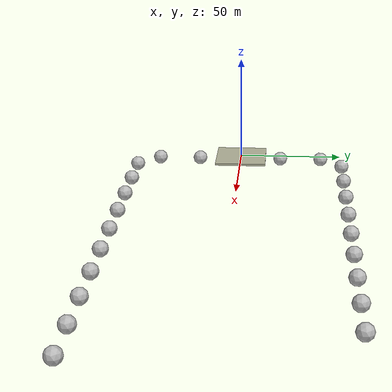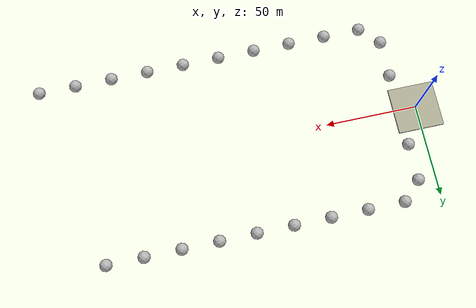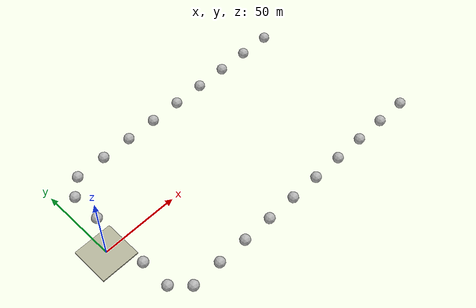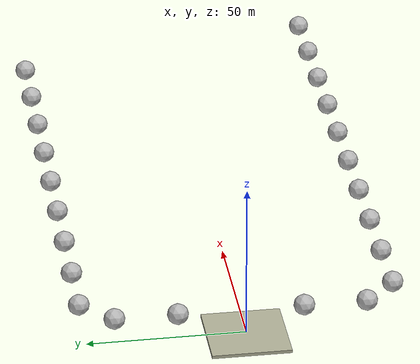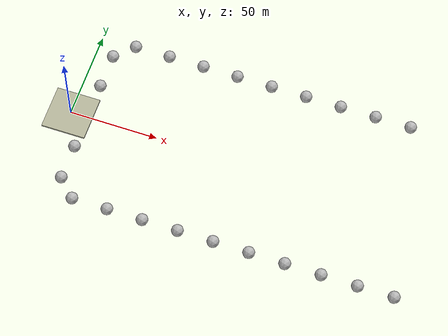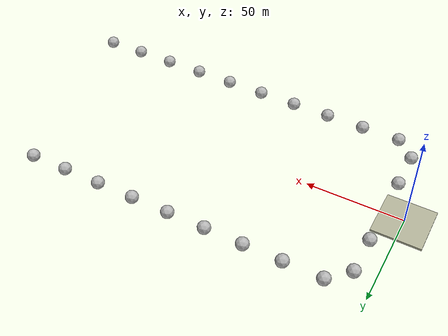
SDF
<sdf version="1.6">
 <world name="default">
  <model name="staging">
   <pose>0 0 -0.002 0 0 0</pose>
   <static>true</static>
   <link name="link">
    <pose>0 0 -0.5 0 0 0</pose>
    <visual name="visual">
     <geometry><box><size>25 25 1</size></box></geometry>
     <material>
      <script><uri>file://media/materials/scripts/gazebo.material</uri><name>Gazebo/Residential</name></script>
     </material>
    </visual>
    <collision name="collision"><geometry><box><size>25 20 1</size></box></geometry></collision>
   </link>
  </model>
  <model name="start_area">
   <static>true</static>
   <pose>10
        0
        1.5
        0
        0
        0</pose>
   <link name="link">
    <collision name="collision">
     <geometry><box><size>1.0
                5.0
                3.0</size></box></geometry>
     <surface><contact><collide_without_contact>1</collide_without_contact></contact></surface>
    </collision>
    <sensor name="start_area_sensor" type="contact"><contact><collision>collision</collision></contact></sensor>
   </link>
   <plugin name="touch_start_area" filename="libTouchPlugin.so">
    <sensor>start_area_sensor</sensor>
    <time>0.001</time>
    <namespace>subt/start</namespace>
    <enabled>true</enabled>
   </plugin>
  </model>
  <model name="blocker_101">
   <pose>20
    -50.0
    0
    0
    0
    0</pose>
   <static>true</static>
   <link name="link">
    <pose>0 0 0 1.5707963267948966 0 0</pose>
    <collision name="collision">
     <geometry>
      <mesh><scale>1.2 1.2 1.2</scale><uri>model://cave_tile_blocker/meshes/cave_tile_blocker.obj</uri></mesh>
     </geometry>
    </collision>
    <visual name="visual">
     <geometry>
      <mesh><scale>1.2 1.2 1.2</scale><uri>model://cave_tile_blocker/meshes/cave_tile_blocker.obj</uri></mesh>
     </geometry>
    </visual>
   </link>
  </model>
  <model name="blocker_102">
   <pose>20
    50.0
    0
    0
    0
    0</pose>
   <static>true</static>
   <link name="link">
    <pose>0 0 0 1.5707963267948966 0 0</pose>
    <collision name="collision">
     <geometry>
      <mesh><scale>1.2 1.2 1.2</scale><uri>model://cave_tile_blocker/meshes/cave_tile_blocker.obj</uri></mesh>
     </geometry>
    </collision>
    <visual name="visual">
     <geometry>
      <mesh><scale>1.2 1.2 1.2</scale><uri>model://cave_tile_blocker/meshes/cave_tile_blocker.obj</uri></mesh>
     </geometry>
    </visual>
   </link>
  </model>
  <model name="blocker_103">
   <pose>40
    -50.0
    0
    0
    0
    0</pose>
   <static>true</static>
   <link name="link">
    <pose>0 0 0 1.5707963267948966 0 0</pose>
    <collision name="collision">
     <geometry>
      <mesh><scale>1.2 1.2 1.2</scale><uri>model://cave_tile_blocker/meshes/cave_tile_blocker.obj</uri></mesh>
     </geometry>
    </collision>
    <visual name="visual">
     <geometry>
      <mesh><scale>1.2 1.2 1.2</scale><uri>model://cave_tile_blocker/meshes/cave_tile_blocker.obj</uri></mesh>
     </geometry>
    </visual>
   </link>
  </model>
  <model name="blocker_104">
   <pose>40
    50.0
    0
    0
    0
    0</pose>
   <static>true</static>
   <link name="link">
    <pose>0 0 0 1.5707963267948966 0 0</pose>
    <collision name="collision">
     <geometry>
      <mesh><scale>1.2 1.2 1.2</scale><uri>model://cave_tile_blocker/meshes/cave_tile_blocker.obj</uri></mesh>
     </geometry>
    </collision>
    <visual name="visual">
     <geometry>
      <mesh><scale>1.2 1.2 1.2</scale><uri>model://cave_tile_blocker/meshes/cave_tile_blocker.obj</uri></mesh>
     </geometry>
    </visual>
   </link>
  </model>
  <model name="blocker_105">
   <pose>60
    -50.0
    0
    0
    0
    0</pose>
   <static>true</static>
   <link name="link">
    <pose>0 0 0 1.5707963267948966 0 0</pose>
    <collision name="collision">
     <geometry>
      <mesh><scale>1.2 1.2 1.2</scale><uri>model://cave_tile_blocker/meshes/cave_tile_blocker.obj</uri></mesh>
     </geometry>
    </collision>
    <visual name="visual">
     <geometry>
      <mesh><scale>1.2 1.2 1.2</scale><uri>model://cave_tile_blocker/meshes/cave_tile_blocker.obj</uri></mesh>
     </geometry>
    </visual>
   </link>
  </model>
  <model name="blocker_106">
   <pose>60
    50.0
    0
    0
    0
    0</pose>
   <static>true</static>
   <link name="link">
    <pose>0 0 0 1.5707963267948966 0 0</pose>
    <collision name="collision">
     <geometry>
      <mesh><scale>1.2 1.2 1.2</scale><uri>model://cave_tile_blocker/meshes/cave_tile_blocker.obj</uri></mesh>
     </geometry>
    </collision>
    <visual name="visual">
     <geometry>
      <mesh><scale>1.2 1.2 1.2</scale><uri>model://cave_tile_blocker/meshes/cave_tile_blocker.obj</uri></mesh>
     </geometry>
    </visual>
   </link>
  </model>
  <model name="blocker_107">
   <pose>80
    -50.0
    0
    0
    0
    0</pose>
   <static>true</static>
   <link name="link">
    <pose>0 0 0 1.5707963267948966 0 0</pose>
    <collision name="collision">
     <geometry>
      <mesh><scale>1.2 1.2 1.2</scale><uri>model://cave_tile_blocker/meshes/cave_tile_blocker.obj</uri></mesh>
     </geometry>
    </collision>
    <visual name="visual">
     <geometry>
      <mesh><scale>1.2 1.2 1.2</scale><uri>model://cave_tile_blocker/meshes/cave_tile_blocker.obj</uri></mesh>
     </geometry>
    </visual>
   </link>
  </model>
  <model name="blocker_108">
   <pose>80
    50.0
    0
    0
    0
    0</pose>
   <static>true</static>
   <link name="link">
    <pose>0 0 0 1.5707963267948966 0 0</pose>
    <collision name="collision">
     <geometry>
      <mesh><scale>1.2 1.2 1.2</scale><uri>model://cave_tile_blocker/meshes/cave_tile_blocker.obj</uri></mesh>
     </geometry>
    </collision>
    <visual name="visual">
     <geometry>
      <mesh><scale>1.2 1.2 1.2</scale><uri>model://cave_tile_blocker/meshes/cave_tile_blocker.obj</uri></mesh>
     </geometry>
    </visual>
   </link>
  </model>
  <model name="blocker_109">
   <pose>100
    -50.0
    0
    0
    0
    0</pose>
   <static>true</static>
   <link name="link">
    <pose>0 0 0 1.5707963267948966 0 0</pose>
    <collision name="collision">
     <geometry>
      <mesh><scale>1.2 1.2 1.2</scale><uri>model://cave_tile_blocker/meshes/cave_tile_blocker.obj</uri></mesh>
     </geometry>
    </collision>
    <visual name="visual">
     <geometry>
      <mesh><scale>1.2 1.2 1.2</scale><uri>model://cave_tile_blocker/meshes/cave_tile_blocker.obj</uri></mesh>
     </geometry>
    </visual>
   </link>
  </model>
  <model name="blocker_110">
   <pose>100
    50.0
    0
    0
    0
    0</pose>
   <static>true</static>
   <link name="link">
    <pose>0 0 0 1.5707963267948966 0 0</pose>
    <collision name="collision">
     <geometry>
      <mesh><scale>1.2 1.2 1.2</scale><uri>model://cave_tile_blocker/meshes/cave_tile_blocker.obj</uri></mesh>
     </geometry>
    </collision>
    <visual name="visual">
     <geometry>
      <mesh><scale>1.2 1.2 1.2</scale><uri>model://cave_tile_blocker/meshes/cave_tile_blocker.obj</uri></mesh>
     </geometry>
    </visual>
   </link>
  </model>
  <model name="blocker_111">
   <pose>120
    -50.0
    0
    0
    0
    0</pose>
   <static>true</static>
   <link name="link">
    <pose>0 0 0 1.5707963267948966 0 0</pose>
    <collision name="collision">
     <geometry>
      <mesh><scale>1.2 1.2 1.2</scale><uri>model://cave_tile_blocker/meshes/cave_tile_blocker.obj</uri></mesh>
     </geometry>
    </collision>
    <visual name="visual">
     <geometry>
      <mesh><scale>1.2 1.2 1.2</scale><uri>model://cave_tile_blocker/meshes/cave_tile_blocker.obj</uri></mesh>
     </geometry>
    </visual>
   </link>
  </model>
  <model name="blocker_112">
   <pose>120
    50.0
    0
    0
    0
    0</pose>
   <static>true</static>
   <link name="link">
    <pose>0 0 0 1.5707963267948966 0 0</pose>
    <collision name="collision">
     <geometry>
      <mesh><scale>1.2 1.2 1.2</scale><uri>model://cave_tile_blocker/meshes/cave_tile_blocker.obj</uri></mesh>
     </geometry>
    </collision>
    <visual name="visual">
     <geometry>
      <mesh><scale>1.2 1.2 1.2</scale><uri>model://cave_tile_blocker/meshes/cave_tile_blocker.obj</uri></mesh>
     </geometry>
    </visual>
   </link>
  </model>
  <model name="blocker_113">
   <pose>140
    -50.0
    0
    0
    0
    0</pose>
   <static>true</static>
   <link name="link">
    <pose>0 0 0 1.5707963267948966 0 0</pose>
    <collision name="collision">
     <geometry>
      <mesh><scale>1.2 1.2 1.2</scale><uri>model://cave_tile_blocker/meshes/cave_tile_blocker.obj</uri></mesh>
     </geometry>
    </collision>
    <visual name="visual">
     <geometry>
      <mesh><scale>1.2 1.2 1.2</scale><uri>model://cave_tile_blocker/meshes/cave_tile_blocker.obj</uri></mesh>
     </geometry>
    </visual>
   </link>
  </model>
  <model name="blocker_114">
   <pose>140
    50.0
    0
    0
    0
    0</pose>
   <static>true</static>
   <link name="link">
    <pose>0 0 0 1.5707963267948966 0 0</pose>
    <collision name="collision">
     <geometry>
      <mesh><scale>1.2 1.2 1.2</scale><uri>model://cave_tile_blocker/meshes/cave_tile_blocker.obj</uri></mesh>
     </geometry>
    </collision>
    <visual name="visual">
     <geometry>
      <mesh><scale>1.2 1.2 1.2</scale><uri>model://cave_tile_blocker/meshes/cave_tile_blocker.obj</uri></mesh>
     </geometry>
    </visual>
   </link>
  </model>
  <model name="blocker_115">
   <pose>160
    -50.0
    0
    0
    0
    0</pose>
   <static>true</static>
   <link name="link">
    <pose>0 0 0 1.5707963267948966 0 0</pose>
    <collision name="collision">
     <geometry>
      <mesh><scale>1.2 1.2 1.2</scale><uri>model://cave_tile_blocker/meshes/cave_tile_blocker.obj</uri></mesh>
     </geometry>
    </collision>
    <visual name="visual">
     <geometry>
      <mesh><scale>1.2 1.2 1.2</scale><uri>model://cave_tile_blocker/meshes/cave_tile_blocker.obj</uri></mesh>
     </geometry>
    </visual>
   </link>
  </model>
  <model name="blocker_116">
   <pose>160
    50.0
    0
    0
    0
    0</pose>
   <static>true</static>
   <link name="link">
    <pose>0 0 0 1.5707963267948966 0 0</pose>
    <collision name="collision">
     <geometry>
      <mesh><scale>1.2 1.2 1.2</scale><uri>model://cave_tile_blocker/meshes/cave_tile_blocker.obj</uri></mesh>
     </geometry>
    </collision>
    <visual name="visual">
     <geometry>
      <mesh><scale>1.2 1.2 1.2</scale><uri>model://cave_tile_blocker/meshes/cave_tile_blocker.obj</uri></mesh>
     </geometry>
    </visual>
   </link>
  </model>
  <model name="blocker_117">
   <pose>180
    -50.0
    0
    0
    0
    0</pose>
   <static>true</static>
   <link name="link">
    <pose>0 0 0 1.5707963267948966 0 0</pose>
    <collision name="collision">
     <geometry>
      <mesh><scale>1.2 1.2 1.2</scale><uri>model://cave_tile_blocker/meshes/cave_tile_blocker.obj</uri></mesh>
     </geometry>
    </collision>
    <visual name="visual">
     <geometry>
      <mesh><scale>1.2 1.2 1.2</scale><uri>model://cave_tile_blocker/meshes/cave_tile_blocker.obj</uri></mesh>
     </geometry>
    </visual>
   </link>
  </model>
  <model name="blocker_118">
   <pose>180
    50.0
    0
    0
    0
    0</pose>
   <static>true</static>
   <link name="link">
    <pose>0 0 0 1.5707963267948966 0 0</pose>
    <collision name="collision">
     <geometry>
      <mesh><scale>1.2 1.2 1.2</scale><uri>model://cave_tile_blocker/meshes/cave_tile_blocker.obj</uri></mesh>
     </geometry>
    </collision>
    <visual name="visual">
     <geometry>
      <mesh><scale>1.2 1.2 1.2</scale><uri>model://cave_tile_blocker/meshes/cave_tile_blocker.obj</uri></mesh>
     </geometry>
    </visual>
   </link>
  </model>
  <model name="blocker_119">
   <pose>200
    -50.0
    0
    0
    0
    0</pose>
   <static>true</static>
   <link name="link">
    <pose>0 0 0 1.5707963267948966 0 0</pose>
    <collision name="collision">
     <geometry>
      <mesh><scale>1.2 1.2 1.2</scale><uri>model://cave_tile_blocker/meshes/cave_tile_blocker.obj</uri></mesh>
     </geometry>
    </collision>
    <visual name="visual">
     <geometry>
      <mesh><scale>1.2 1.2 1.2</scale><uri>model://cave_tile_blocker/meshes/cave_tile_blocker.obj</uri></mesh>
     </geometry>
    </visual>
   </link>
  </model>
  <model name="blocker_141">
   <pose>10.0
    -40
    0
    0
    0
    0</pose>
   <static>true</static>
   <link name="link">
    <pose>0 0 0 1.5707963267948966 0 0</pose>
    <collision name="collision">
     <geometry>
      <mesh><scale>1.2 1.2 1.2</scale><uri>model://cave_tile_blocker/meshes/cave_tile_blocker.obj</uri></mesh>
     </geometry>
    </collision>
    <visual name="visual">
     <geometry>
      <mesh><scale>1.2 1.2 1.2</scale><uri>model://cave_tile_blocker/meshes/cave_tile_blocker.obj</uri></mesh>
     </geometry>
    </visual>
   </link>
  </model>
  <model name="blocker_143">
   <pose>10.0
    -20
    0
    0
    0
    0</pose>
   <static>true</static>
   <link name="link">
    <pose>0 0 0 1.5707963267948966 0 0</pose>
    <collision name="collision">
     <geometry>
      <mesh><scale>1.2 1.2 1.2</scale><uri>model://cave_tile_blocker/meshes/cave_tile_blocker.obj</uri></mesh>
     </geometry>
    </collision>
    <visual name="visual">
     <geometry>
      <mesh><scale>1.2 1.2 1.2</scale><uri>model://cave_tile_blocker/meshes/cave_tile_blocker.obj</uri></mesh>
     </geometry>
    </visual>
   </link>
  </model>
  <model name="blocker_146">
   <pose>10.0
    20
    0
    0
    0
    0</pose>
   <static>true</static>
   <link name="link">
    <pose>0 0 0 1.5707963267948966 0 0</pose>
    <collision name="collision">
     <geometry>
      <mesh><scale>1.2 1.2 1.2</scale><uri>model://cave_tile_blocker/meshes/cave_tile_blocker.obj</uri></mesh>
     </geometry>
    </collision>
    <visual name="visual">
     <geometry>
      <mesh><scale>1.2 1.2 1.2</scale><uri>model://cave_tile_blocker/meshes/cave_tile_blocker.obj</uri></mesh>
     </geometry>
    </visual>
   </link>
  </model>
  <model name="blocker_148">
   <pose>10.0
    40
    0
    0
    0
    0</pose>
   <static>true</static>
   <link name="link">
    <pose>0 0 0 1.5707963267948966 0 0</pose>
    <collision name="collision">
     <geometry>
      <mesh><scale>1.2 1.2 1.2</scale><uri>model://cave_tile_blocker/meshes/cave_tile_blocker.obj</uri></mesh>
     </geometry>
    </collision>
    <visual name="visual">
     <geometry>
      <mesh><scale>1.2 1.2 1.2</scale><uri>model://cave_tile_blocker/meshes/cave_tile_blocker.obj</uri></mesh>
     </geometry>
    </visual>
   </link>
  </model>
 </world>
</sdf>
